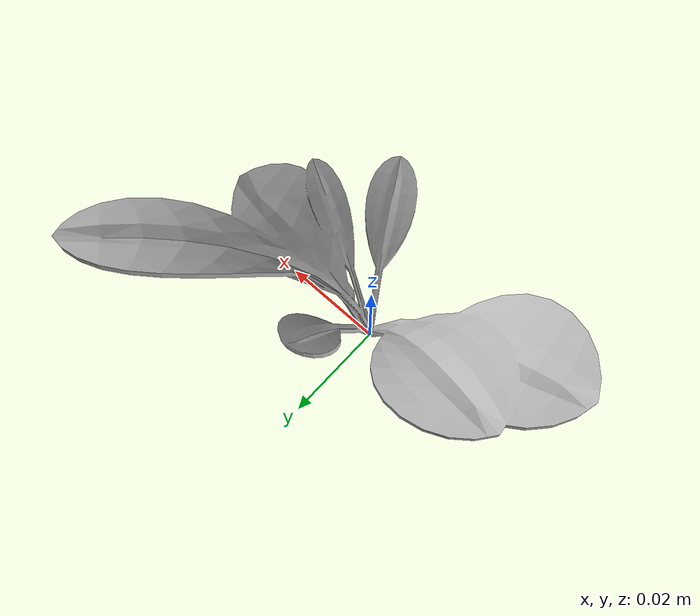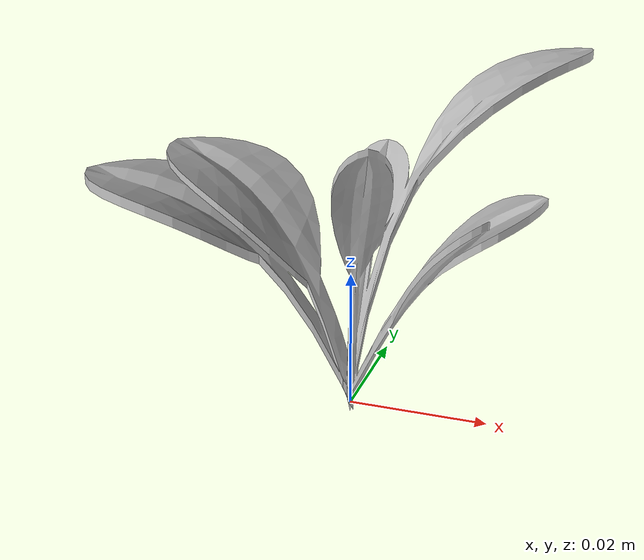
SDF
<sdf version="1.6">
  <model name="sugar_beet_55">
    <static>true</static>
    <link name="body">
      <visual name="visual">
        <geometry>
          <mesh>
            <uri>file:///sugar_beet_55/media/sugar_beet.dae</uri>
          </mesh>
        </geometry>
      </visual>
    </link>
  </model>
</sdf>
